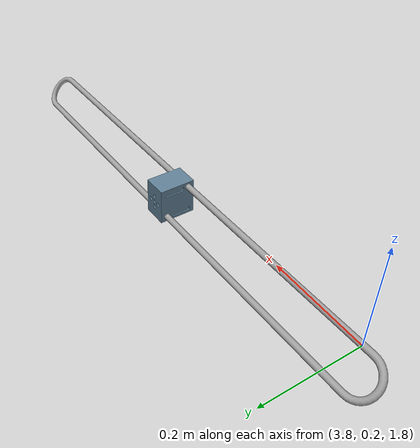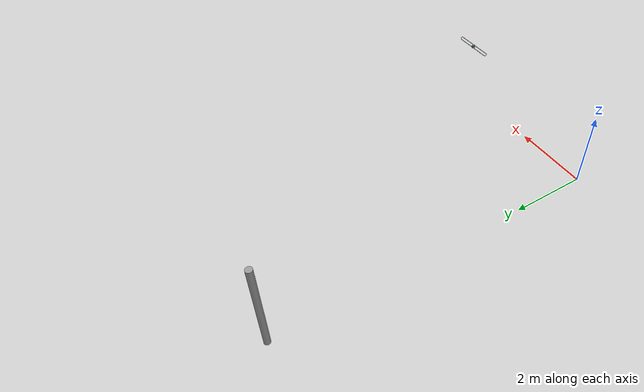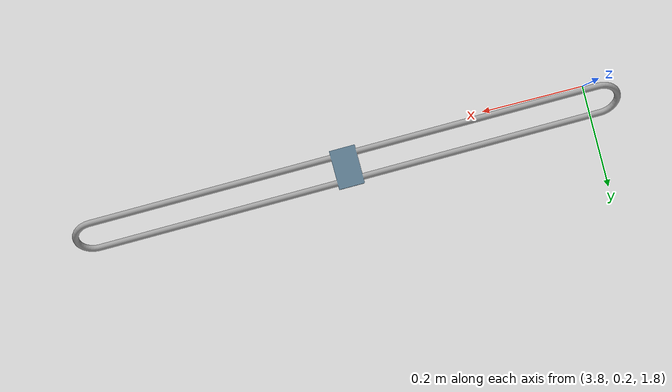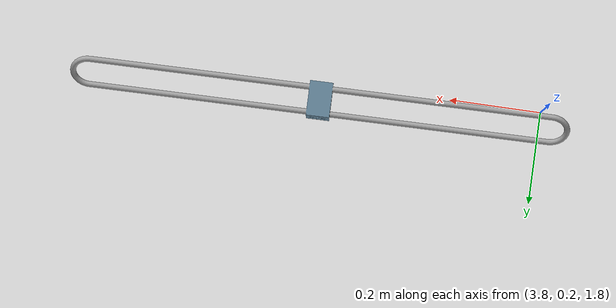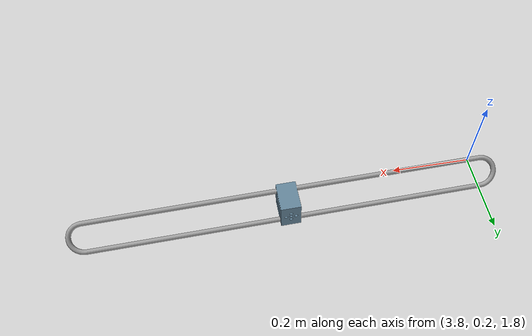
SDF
<sdf version="1.6">
 <world name="default">
  <plugin name="ros_interface_plugin" filename="librotors_gazebo_ros_interface_plugin.so"/>
  <gravity>0 0 -9.8</gravity>
  <magnetic_field>6e-06 2.3e-05 -4.2e-05</magnetic_field>
  <atmosphere type="adiabatic"/>
  <physics type="ode">
   <max_step_size>0.001</max_step_size>
   <real_time_factor>1</real_time_factor>
   <real_time_update_rate>1000</real_time_update_rate>
  </physics>
  <spherical_coordinates>
   <surface_model>EARTH_WGS84</surface_model>
   <latitude_deg>0</latitude_deg>
   <longitude_deg>0</longitude_deg>
   <elevation>0</elevation>
   <heading_deg>0</heading_deg>
  </spherical_coordinates>
  <model name="pylon">
   <static>1</static>
   <link name="link">
    <inertial>
     <mass>1</mass>
     <inertia><ixx>0.145833</ixx><ixy>0</ixy><ixz>0</ixz><iyy>0.145833</iyy><iyz>0</iyz><izz>0.125</izz></inertia>
    </inertial>
    <visual name="visual">
     <geometry><cylinder><radius>0.076</radius><length>2.438</length></cylinder></geometry>
     <material>
      <script><name>Gazebo/Grey</name><uri>file://media/materials/scripts/gazebo.material</uri></script>
      <shader type="pixel"/>
     </material>
    </visual>
    <collision name="collision">
     <geometry><cylinder><radius>0.762</radius><length>2.438</length></cylinder></geometry>
     <surface>
      <friction>
       <ode><mu>1</mu><mu2>1</mu2><fdir1>0 0 0</fdir1><slip1>0</slip1><slip2>0</slip2></ode>
       <torsional>
        <coefficient>1</coefficient>
        <patch_radius>0</patch_radius>
        <surface_radius>0</surface_radius>
        <use_patch_radius>1</use_patch_radius>
        <ode><slip>0</slip></ode>
       </torsional>
      </friction>
      <bounce><restitution_coefficient>0</restitution_coefficient><threshold>1e+06</threshold></bounce>
      <contact>
       <collide_without_contact>0</collide_without_contact>
       <collide_without_contact_bitmask>1</collide_without_contact_bitmask>
       <collide_bitmask>1</collide_bitmask>
       <ode>
        <soft_cfm>0</soft_cfm>
        <soft_erp>0.2</soft_erp>
        <kp>1e+13</kp>
        <kd>1</kd>
        <max_vel>0.01</max_vel>
        <min_depth>0</min_depth>
       </ode>
       <bullet>
        <split_impulse>1</split_impulse>
        <split_impulse_penetration_threshold>-0.01</split_impulse_penetration_threshold>
        <soft_cfm>0</soft_cfm>
        <soft_erp>0.2</soft_erp>
        <kp>1e+13</kp>
        <kd>1</kd>
       </bullet>
      </contact>
     </surface>
    </collision>
   </link>
   <static>0</static>
   <pose>0 408.66 1.2192 0 -0 0</pose>
  </model>
  <model name="pylon_0">
   <static>1</static>
   <link name="link">
    <inertial>
     <mass>1</mass>
     <inertia><ixx>0.145833</ixx><ixy>0</ixy><ixz>0</ixz><iyy>0.145833</iyy><iyz>0</iyz><izz>0.125</izz></inertia>
    </inertial>
    <visual name="visual">
     <geometry><cylinder><radius>0.076</radius><length>2.438</length></cylinder></geometry>
     <material>
      <script><name>Gazebo/Grey</name><uri>file://media/materials/scripts/gazebo.material</uri></script>
      <shader type="pixel"/>
     </material>
    </visual>
    <collision name="collision">
     <geometry><cylinder><radius>0.762</radius><length>2.438</length></cylinder></geometry>
     <surface>
      <friction>
       <ode><mu>1</mu><mu2>1</mu2><fdir1>0 0 0</fdir1><slip1>0</slip1><slip2>0</slip2></ode>
       <torsional>
        <coefficient>1</coefficient>
        <patch_radius>0</patch_radius>
        <surface_radius>0</surface_radius>
        <use_patch_radius>1</use_patch_radius>
        <ode><slip>0</slip></ode>
       </torsional>
      </friction>
      <bounce><restitution_coefficient>0</restitution_coefficient><threshold>1e+06</threshold></bounce>
      <contact>
       <collide_without_contact>0</collide_without_contact>
       <collide_without_contact_bitmask>1</collide_without_contact_bitmask>
       <collide_bitmask>1</collide_bitmask>
       <ode>
        <soft_cfm>0</soft_cfm>
        <soft_erp>0.2</soft_erp>
        <kp>1e+13</kp>
        <kd>1</kd>
        <max_vel>0.01</max_vel>
        <min_depth>0</min_depth>
       </ode>
       <bullet>
        <split_impulse>1</split_impulse>
        <split_impulse_penetration_threshold>-0.01</split_impulse_penetration_threshold>
        <soft_cfm>0</soft_cfm>
        <soft_erp>0.2</soft_erp>
        <kp>1e+13</kp>
        <kd>1</kd>
       </bullet>
      </contact>
     </surface>
    </collision>
   </link>
   <static>0</static>
   <pose>0 8.66 1.2192 0 -0 0</pose>
  </model>
  <model name="communications_module">
   <pose>4.280454 0.239433 1.782488 -0.003418 0.002042 -1.556979</pose>
   <plugin name="link_states" filename="libiarc_simulation_tools_link_plugin.so">
    <link_name>link</link_name>
   </plugin>
   <plugin name="dipole_magnet" filename="libiarc_simulation_tools_dipole_moment.so">
    <bodyName>magnet</bodyName>
    <Id>3</Id>
    <dipole_moment>0 0 0.739859</dipole_moment>
    <shouldPublish>true</shouldPublish>
    <topicNs>magnetic_force/communicatios_module</topicNs>
    <updateRate>100</updateRate>
   </plugin>
   <static>0</static>
   <link name="magnet">
    <inertial>
     <mass>1</mass>
     <inertia><ixx>0.145833</ixx><ixy>0</ixy><ixz>0</ixz><iyy>0.145833</iyy><iyz>0</iyz><izz>0.125</izz></inertia>
    </inertial>
    <pose>0.02921 0 0 0 -1.57 0</pose>
    <visual name="visual">
     <geometry><cylinder><radius>0.003968</radius><length>0.0127</length></cylinder></geometry>
     <material>
      <script><name>Gazebo/Grey</name><uri>file://media/materials/scripts/gazebo.material</uri></script>
      <shader type="pixel"><normal_map>__default__</normal_map></shader>
      <ambient>0.3 0.3 0.3 1</ambient>
      <diffuse>0.7 0.7 0.7 1</diffuse>
      <specular>0.01 0.01 0.01 1</specular>
      <emissive>0 0 0 1</emissive>
     </material>
    </visual>
    <collision name="collision">
     <geometry><cylinder><radius>0.003968</radius><length>0.0127</length></cylinder></geometry>
     <surface>
      <friction>
       <ode><mu>1</mu><mu2>1</mu2><fdir1>0 0 0</fdir1><slip1>0</slip1><slip2>0</slip2></ode>
       <torsional>
        <coefficient>1</coefficient>
        <patch_radius>0</patch_radius>
        <surface_radius>0</surface_radius>
        <use_patch_radius>1</use_patch_radius>
        <ode><slip>0</slip></ode>
       </torsional>
      </friction>
      <bounce><restitution_coefficient>0</restitution_coefficient><threshold>1e+06</threshold></bounce>
      <contact>
       <collide_without_contact>0</collide_without_contact>
       <collide_without_contact_bitmask>1</collide_without_contact_bitmask>
       <collide_bitmask>1</collide_bitmask>
       <ode>
        <soft_cfm>0</soft_cfm>
        <soft_erp>0.2</soft_erp>
        <kp>1e+13</kp>
        <kd>1</kd>
        <max_vel>0.01</max_vel>
        <min_depth>0</min_depth>
       </ode>
       <bullet>
        <split_impulse>1</split_impulse>
        <split_impulse_penetration_threshold>-0.01</split_impulse_penetration_threshold>
        <soft_cfm>0</soft_cfm>
        <soft_erp>0.2</soft_erp>
        <kp>1e+13</kp>
        <kd>1</kd>
       </bullet>
      </contact>
     </surface>
    </collision>
   </link>
   <static>0</static>
   <link name="link">
    <inertial>
     <mass>2</mass>
     <inertia>
      <ixx>0.0728462</ixx>
      <ixy>0</ixy>
      <ixz>0</ixz>
      <iyy>0.002197</iyy>
      <iyz>0</iyz>
      <izz>0.0736416</izz>
     </inertia>
    </inertial>
    <collision name="collision">
     <geometry>
      <mesh><uri>model://communications_module/meshes/communications_module.dae</uri><scale>1 1 1</scale></mesh>
     </geometry>
     <surface>
      <contact><collide_bitmask>65535</collide_bitmask></contact>
      <friction><ode><mu>100</mu><mu2>50</mu2></ode></friction>
     </surface>
    </collision>
    <visual name="visual">
     <geometry>
      <mesh><uri>model://communications_module/meshes/communications_module.dae</uri><scale>1 1 1</scale></mesh>
     </geometry>
    </visual>
   </link>
   <joint name="magnet_joint" type="fixed"><parent>link</parent><child>magnet</child></joint>
   <joint name="radar_mast" type="revolute">
    <parent>mast</parent>
    <child>radar</child>
    <pose>0 -0.500 0 0 0 0</pose>
    <axis><xyz>0 0 1</xyz></axis>
   </joint>
   <joint name="mast_table" type="fixed"><parent>table</parent><child>mast</child></joint>
   <joint name="dish_left_table" type="fixed"><parent>table</parent><child>dish_left</child></joint>
   <joint name="dish_right_table" type="fixed"><parent>table</parent><child>dish_right</child></joint>
   <joint name="flag_table" type="fixed"><parent>table</parent><child>flag</child></joint>
   <joint name="gun_back_left_table" type="fixed"><parent>table</parent><child>gun_back_left</child></joint>
   <joint name="gun_back_right_table" type="fixed"><parent>table</parent><child>gun_back_right</child></joint>
   <joint name="gun_front_left_table" type="fixed"><parent>table</parent><child>gun_front_left</child></joint>
   <joint name="gun_front_right_table" type="fixed"><parent>table</parent><child>gun_front_right</child></joint>
   <joint name="led_light_red_mast" type="fixed"><parent>mast</parent><child>led_light_red</child></joint>
   <joint name="led_light_green_mast" type="fixed"><parent>mast</parent><child>led_light_green</child></joint>
  </model>
  <model name="communications_module">
   <plugin name="link_states" filename="libiarc_simulation_tools_link_plugin.so">
    <link_name>link</link_name>
   </plugin>
   <plugin name="dipole_magnet" filename="libiarc_simulation_tools_magnet_plugin.so">
    <bodyName>magnet</bodyName>
    <Id>3</Id>
    <dipole_moment>0 0 0.739859</dipole_moment>
    <shouldPublish>true</shouldPublish>
    <topicNs>magnetic_force/communicatios_module</topicNs>
    <updateRate>100</updateRate>
   </plugin>
   <static>1</static>
   <link name="magnet">
    <inertial>
     <mass>1</mass>
     <inertia><ixx>0.145833</ixx><ixy>0</ixy><ixz>0</ixz><iyy>0.145833</iyy><iyz>0</iyz><izz>0.125</izz></inertia>
    </inertial>
    <pose>0.02921 0 0 0 -1.57 0</pose>
    <visual name="visual">
     <geometry><cylinder><radius>0.003968</radius><length>0.0127</length></cylinder></geometry>
     <material>
      <script><name>Gazebo/Grey</name><uri>file://media/materials/scripts/gazebo.material</uri></script>
      <shader type="pixel"><normal_map>__default__</normal_map></shader>
      <ambient>0.3 0.3 0.3 1</ambient>
      <diffuse>0.7 0.7 0.7 1</diffuse>
      <specular>0.01 0.01 0.01 1</specular>
      <emissive>0 0 0 1</emissive>
     </material>
    </visual>
    <collision name="collision">
     <geometry><cylinder><radius>0.003968</radius><length>0.0127</length></cylinder></geometry>
     <surface>
      <friction>
       <ode><mu>1</mu><mu2>1</mu2><fdir1>0 0 0</fdir1><slip1>0</slip1><slip2>0</slip2></ode>
       <torsional>
        <coefficient>1</coefficient>
        <patch_radius>0</patch_radius>
        <surface_radius>0</surface_radius>
        <use_patch_radius>1</use_patch_radius>
        <ode><slip>0</slip></ode>
       </torsional>
      </friction>
      <bounce><restitution_coefficient>0</restitution_coefficient><threshold>1e+06</threshold></bounce>
      <contact>
       <collide_without_contact>0</collide_without_contact>
       <collide_without_contact_bitmask>1</collide_without_contact_bitmask>
       <collide_bitmask>1</collide_bitmask>
       <ode>
        <soft_cfm>0</soft_cfm>
        <soft_erp>0.2</soft_erp>
        <kp>1e+13</kp>
        <kd>1</kd>
        <max_vel>0.01</max_vel>
        <min_depth>0</min_depth>
       </ode>
       <bullet>
        <split_impulse>1</split_impulse>
        <split_impulse_penetration_threshold>-0.01</split_impulse_penetration_threshold>
        <soft_cfm>0</soft_cfm>
        <soft_erp>0.2</soft_erp>
        <kp>1e+13</kp>
        <kd>1</kd>
       </bullet>
      </contact>
     </surface>
    </collision>
   </link>
   <static>0</static>
   <link name="link">
    <inertial>
     <mass>2</mass>
     <inertia>
      <ixx>0.0728462</ixx>
      <ixy>0</ixy>
      <ixz>0</ixz>
      <iyy>0.002197</iyy>
      <iyz>0</iyz>
      <izz>0.0736416</izz>
     </inertia>
    </inertial>
    <collision name="collision">
     <geometry>
      <mesh><uri>model://communications_module/meshes/communications_module.dae</uri><scale>1 1 1</scale></mesh>
     </geometry>
     <surface>
      <contact><collide_bitmask>65535</collide_bitmask></contact>
      <friction><ode><mu>100</mu><mu2>50</mu2></ode></friction>
     </surface>
    </collision>
    <visual name="visual">
     <geometry>
      <mesh><uri>model://communications_module/meshes/communications_module.dae</uri><scale>1 1 1</scale></mesh>
     </geometry>
    </visual>
   </link>
   <joint name="magnet_joint" type="fixed"><parent>link</parent><child>magnet</child></joint>
   <pose>4.280454 0.239433 1.782488 -0.003418 0.002042 -1.556979</pose>
  </model>
  <light name="sun" type="directional">
   <pose>0 0 10 0 0 0</pose>
   <diffuse>0.8 0.8 0.8 1</diffuse>
   <specular>0.2 0.2 0.2 1</specular>
   <direction>0.4864 0.3039 -0.819</direction>
   <attenuation>
    <range>1000</range>
    <constant>0.9</constant>
    <linear>0.01</linear>
    <quadratic>0.001</quadratic>
   </attenuation>
   <spot><inner_angle>0</inner_angle><outer_angle>0</outer_angle><falloff>0</falloff></spot>
  </light>
  <scene>
   <sky>
    <time>10</time>
    <sunrise>6</sunrise>
    <sunset>18</sunset>
    <clouds><speed>12</speed><direction>1.57079</direction></clouds>
   </sky>
   <grid>false</grid>
   <origin_visual>false</origin_visual>
  </scene>
 </world>
</sdf>
